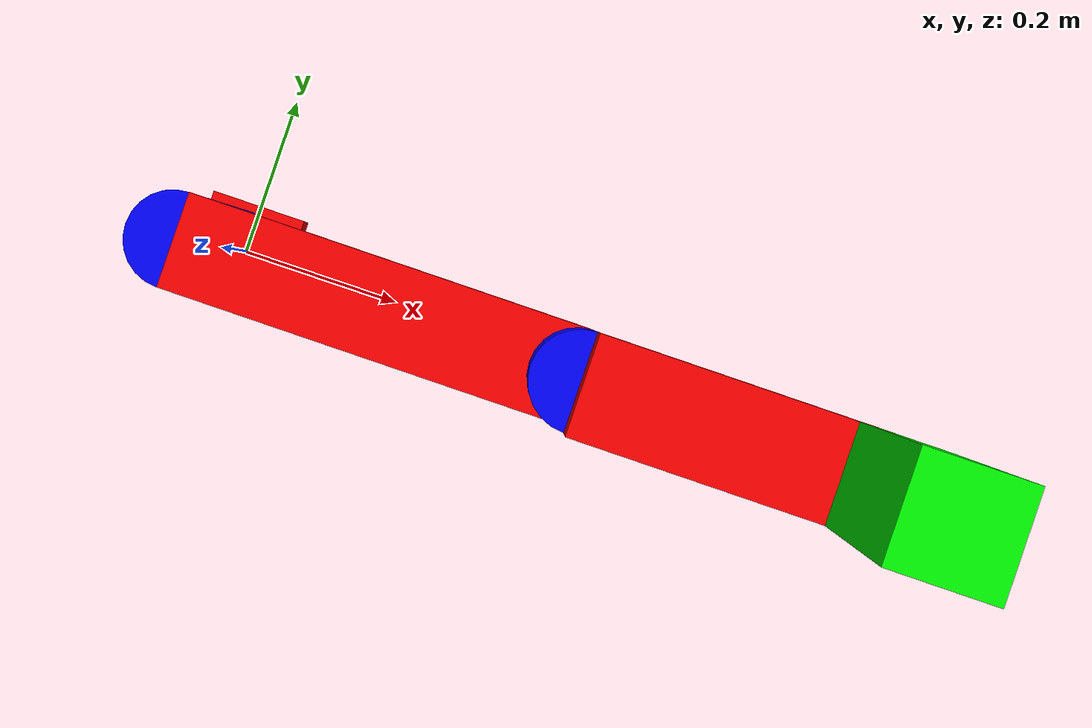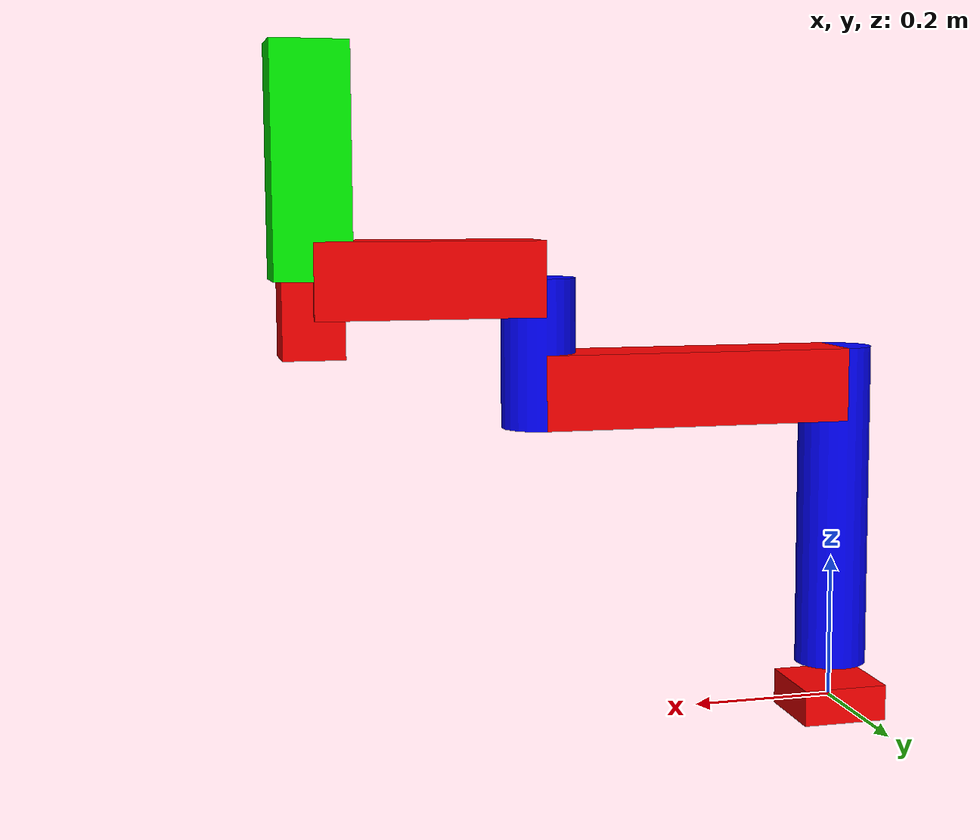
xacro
<?xml version="1.0"?>
<robot name="scara" xmlns:xacro="http://www.ros.org/wiki/xacro">

  <xacro:property name="l2" value="0.45"/>
  <xacro:property name="l2_r" value="0.05"/>
  <xacro:property name="l3" value="0.425"/>
  <xacro:property name="l4" value="0.2"/>
  <xacro:property name="l4_r" value="0.05"/>
  <xacro:property name="l5" value="0.3"/>
  <xacro:property name="gripper_length" value="0.1"/>

  <material name="blue">
    <color rgba="0 0 1 1"/>
  </material>

  <material name="red">
    <color rgba="1 0 0 1"/>
  </material>

  <material name="green">
    <color rgba="0 1 0 1"/>
  </material>

<!--links-->
  <link name="base_link"/>

  <link name="link_1">
    <visual>
      <geometry>
        <box size="0.12 0.12 0.05"/>
      </geometry>
      <material name="red"/>
      <origin xyz="0 0 0"/>
    </visual>
    <inertial>
      <mass value="1"/>
      <origin xyz="0 0 0.025"/>
      <inertia ixx="1" ixy="0" ixz="0" iyy="1" iyz="0" izz="1"/>
    </inertial>
  </link>

  <link name="link_2">
    <visual>
      <geometry>
        <cylinder length="${l2}" radius="${l2_r}"/>
      </geometry>
      <material name="blue"/>
      <origin xyz="0 0 ${l2/2}"/>
    </visual>
    <inertial>
      <mass value="0.5"/>
      <origin xyz="0 0 ${l2/2}"/>
      <inertia ixx="0.5" ixy="0" ixz="0" iyy="0.5" iyz="0" izz="0.5"/>
    </inertial>
  </link>

  <link name="link_3">
    <visual>
      <geometry>
        <box size="0.1 0.1 ${l3}"/>
      </geometry>
      <material name="red"/>
      <origin rpy="0 1.571 0" xyz="${l3/2} 0 0"/>
    </visual>
    <inertial>
      <mass value="0.5"/>
      <origin xyz="${l3/2} 0 0"/>
      <inertia ixx="0.5" ixy="0" ixz="0" iyy="0.5" iyz="0" izz="0.5"/>
    </inertial>
  </link>

  <link name="link_4">
    <visual>
      <geometry>
        <cylinder length="${l4}" radius="${l4_r}"/>
      </geometry>
      <material name="blue"/>
      <origin xyz="0 0 0"/>
    </visual>
    <inertial>
      <mass value="0.5"/>
      <origin xyz="0 0 0"/>
      <inertia ixx="0.5" ixy="0" ixz="0" iyy="0.5" iyz="0" izz="0.5"/>
    </inertial>
  </link>

  <link name="link_5">
    <visual>
      <geometry>
        <box size="0.1 0.1 ${l5}"/>
      </geometry>
      <material name="red"/>
      <origin rpy="0 1.571 0" xyz="${l5/2} 0 0"/>
    </visual>
    <inertial>
      <mass value="0.5"/>
      <origin xyz="${l5/2} 0 0"/>
      <inertia ixx="0.5" ixy="0" ixz="0" iyy="0.5" iyz="0" izz="0.5"/>
    </inertial>
  </link>

  <link name="link_6">
    <inertial>
        <origin xyz="0 0 ${l5/2}" />
        <mass value="1"/>
        <inertia ixx="0.1" ixy="0" ixz="0" iyy="0.1" iyz="0" izz="0.1"/>
      </inertial>
      <visual>
        <origin xyz="0 0 ${l5/2}" />
        <geometry>
          <box size="0.1 0.1 ${l5}" />
      </geometry>
      <material name="green" />
    </visual>
  </link>

  <link name="gripper_link">
    <visual>
      <origin xyz="0 0 0" />
      <geometry>
        <box size="0.08 0.08 ${gripper_length}" />
      </geometry>
      <material name="red"/>
    </visual>
    <inertial>
      <mass value="0.2"/>
      <origin xyz="0 0 0" />
      <inertia ixx="0.1" ixy="0" ixz="0" iyy="0.1" iyz="0" izz="0.1"/>
    </inertial>
  </link>

<!--Joints-->
  <joint name="fixedjoint_1" type="fixed">
    <parent link="base_link"/>
    <child link="link_1"/>
  </joint>

  <joint name="fixedjoint_2" type="fixed">
    <parent link="link_2"/>
    <child link="link_3"/>
    <origin xyz="0 0 ${l2 - 0.05}"/>
  </joint>

  <joint name="fixedjoint_3" type="fixed">
    <parent link="link_4"/>
    <child link="link_5"/>
    <origin xyz="0 0 ${l4/2}"/>
  </joint>

<!--revolut joints-->
  <joint name="revolute_1" type="revolute">
    <parent link="link_1"/>
    <child link="link_2"/>
    <origin xyz="0 0 0.05"/>
    <axis xyz="0 0 1"/>
    <limit effort="1000.0" lower="-1.57" upper="1.57" velocity="0.5"/>
    <dynamics damping="0.2" friction="0.1"/>
  </joint>

  <joint name="revolute_2" type="revolute">
    <parent link="link_3"/>
    <child link="link_4"/>
    <origin xyz="${l3} 0 0.05"/>
    <axis xyz="0 0 1"/>
    <limit effort="1000.0" lower="-1.57" upper="1.57" velocity="0.5"/>
    <dynamics damping="0.2" friction="0.1"/>
  </joint>

  <joint name="gripper_joint" type="revolute">
    <parent link="link_6"/>
    <child link="gripper_link"/>
    <origin xyz="0 0 ${-gripper_length/2}" />
    <axis xyz="0 0 1"/>
    <limit effort="1000.0" lower="-1.57" upper="1.57" velocity="0.5"/>
    <dynamics damping="0.2" friction="0.1"/>
  </joint>

  <!--Prismatic joint-->

  <joint name="prismatic_joint_1" type="prismatic">
    <parent link="link_5" />
    <child link="link_6" />
    <origin xyz="${l5} 0 0" rpy="0 0 0" />
    <axis xyz="0 0 -1" />
    <limit lower="0.0" upper="${l5}" effort="100"  velocity="1.0" />
  </joint>
</robot>
